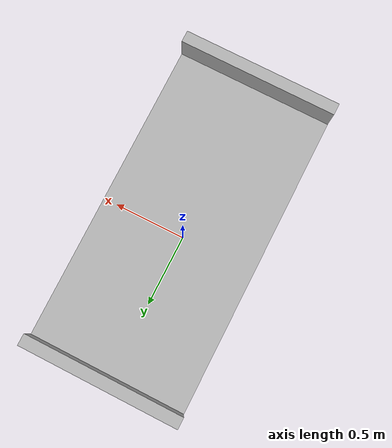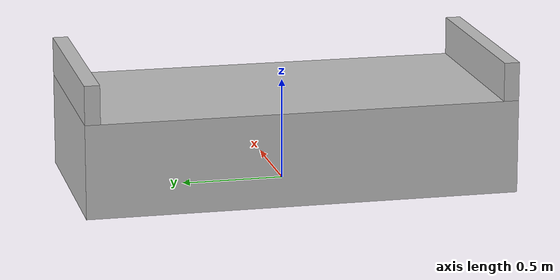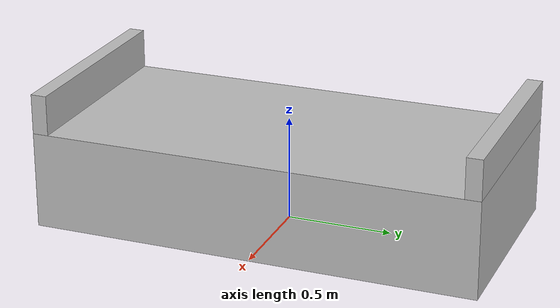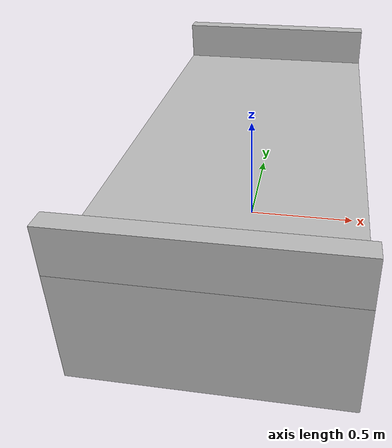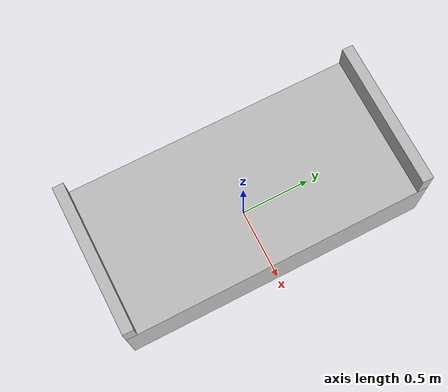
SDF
<?xml version="1.0"?>
<sdf version="1.6">
  <model name="rgo2019/bed_frame">
    <link name="1_link">
      <collision name="1_col">
        <geometry>
          <box>
            <size>1.02 2.12 0.46</size>
          </box>
        </geometry>
      </collision>
      <visual name="1_vis">
        <geometry>
          <box>
            <size>1.02 2.12 0.46</size>
          </box>
        </geometry>
        <material>
          <ambient>0.75 0.75 0.75 1</ambient>
        </material>
      </visual>
      <pose>0 0 0.23 0 0 0</pose>
    </link>
    <link name="2_link">
      <collision name="2_col">
        <geometry>
          <box>
            <size>1.02 0.075 0.19</size>
          </box>
        </geometry>
      </collision>
      <visual name="2_vis">
        <geometry>
          <box>
            <size>1.02 0.075 0.19</size>
          </box>
        </geometry>
        <material>
          <ambient>0.75 0.75 0.75 1</ambient>
        </material>
      </visual>
      <pose>0 -1.0225 0.555 0 0 0</pose>
    </link>
    <link name="3_link">
      <collision name="3_col">
        <geometry>
          <box>
            <size>1.02 0.075 0.19</size>
          </box>
        </geometry>
      </collision>
      <visual name="3_vis">
        <geometry>
          <box>
            <size>1.02 0.075 0.19</size>
          </box>
        </geometry>
        <material>
          <ambient>0.75 0.75 0.75 1</ambient>
        </material>
      </visual>
      <pose>0 1.0225 0.555 0 0 0</pose>
    </link>
    <link name="in_front_of">
      <virtual_volume name="in_front_of_vv">
        <geometry>
          <box>
            <size>2.2 2.1 0.01</size>
          </box>
        </geometry>
        <pose>0.0 0.55 0.005 0 0 0</pose>
      </virtual_volume>
    </link>
    <static>true</static>
  </model>
</sdf>
